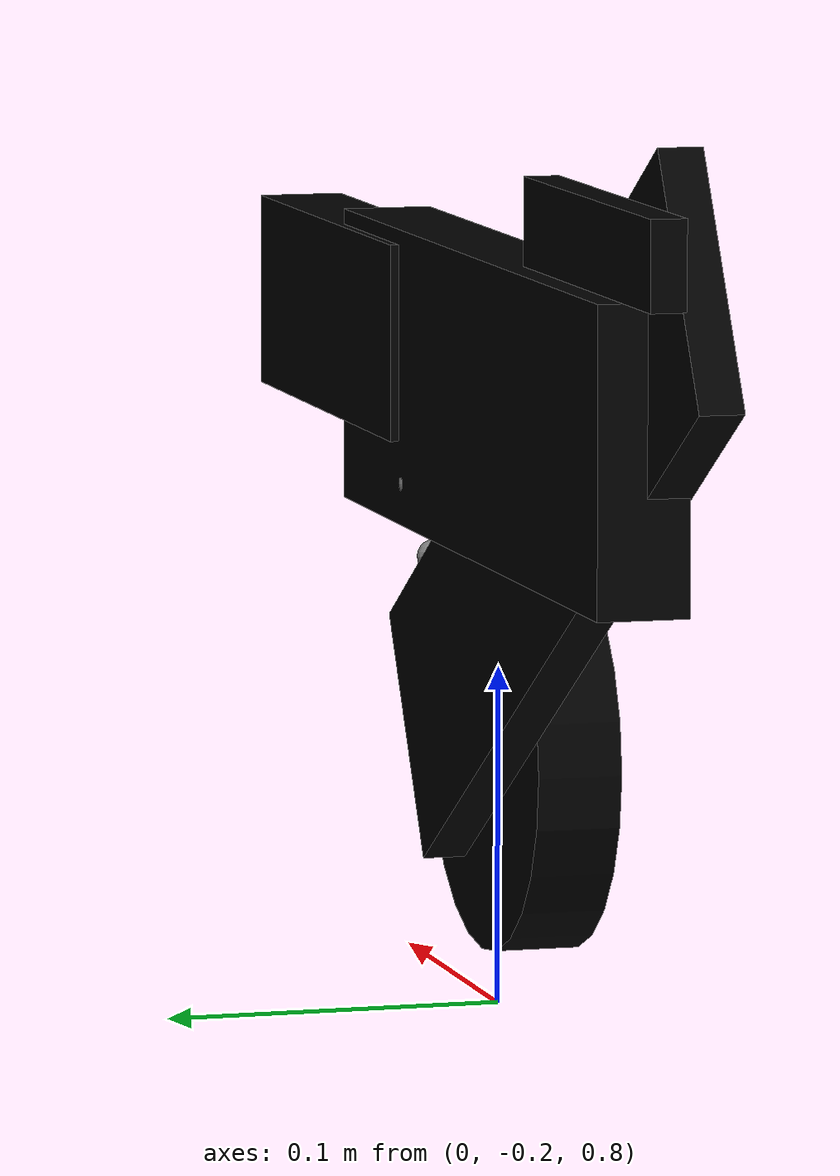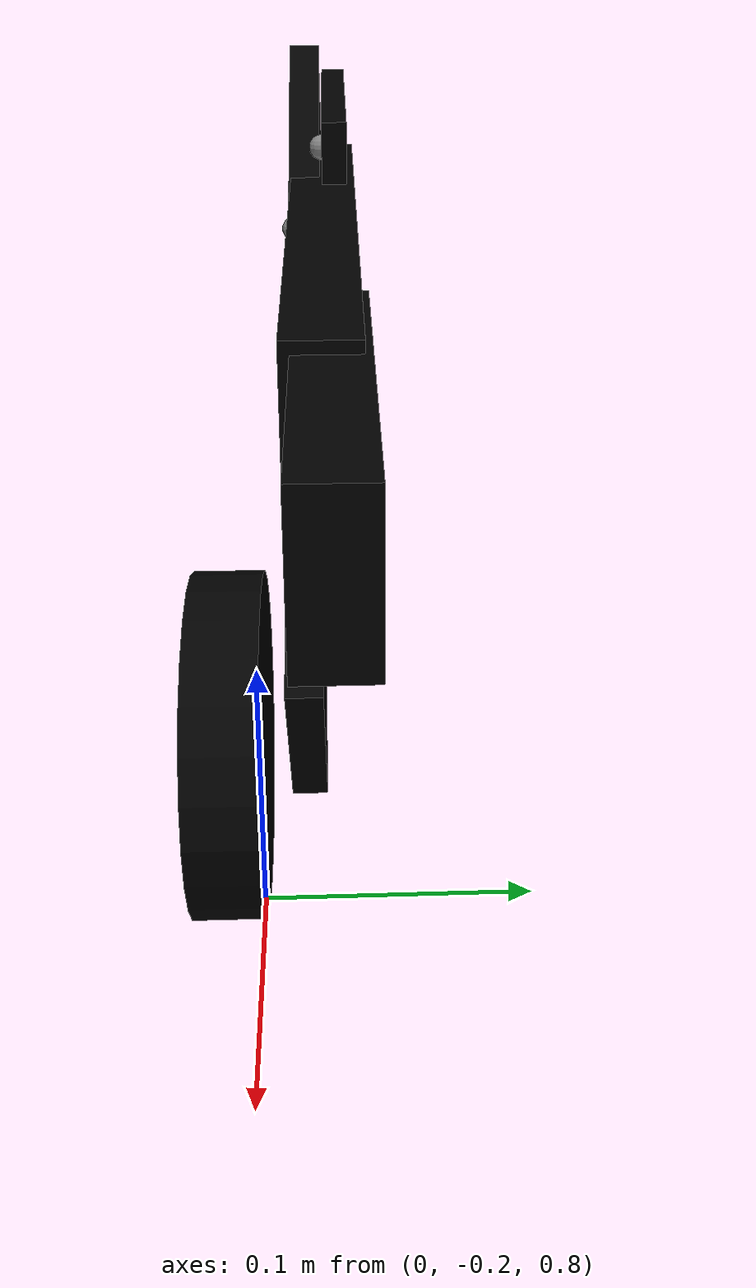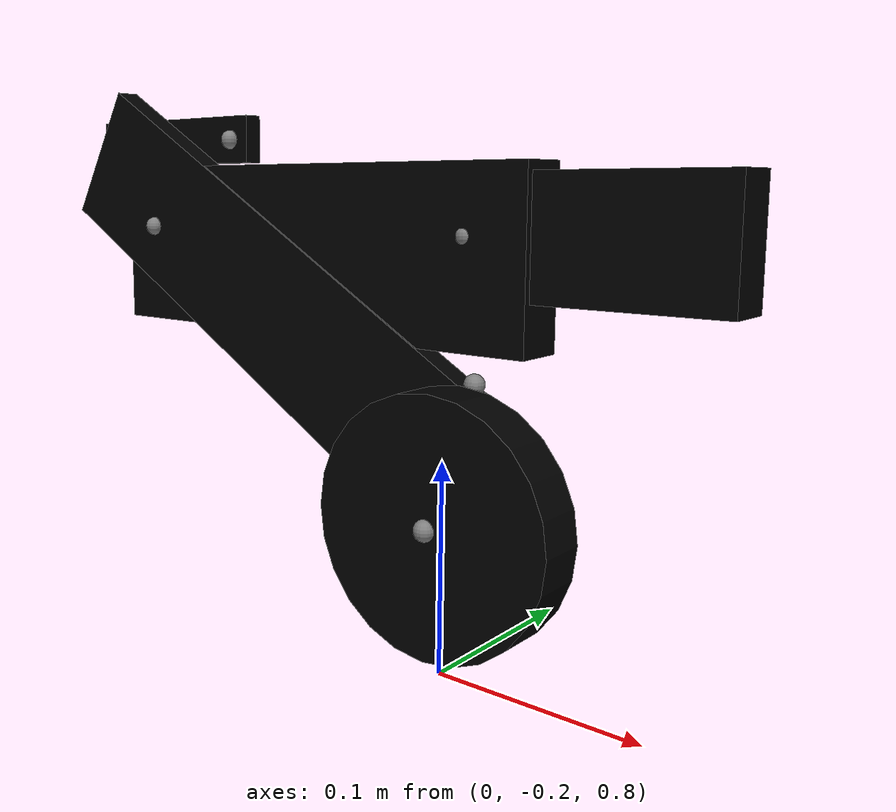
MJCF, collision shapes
<mujoco model="wheelbipeV14_2_sysid_right_fixed_1m">
  <default>
    <default class="robot">
      <default class="motor">
        <joint damping="0.01" armature="0.0" frictionloss="0.01" />
        <motor />
      </default>
      <default class="visual">
        <geom material="visualgeom" contype="0" conaffinity="0" group="2" />
      </default>
      <default class="collision">
        <geom material="collision_material" condim="3" contype="0" conaffinity="1" priority="1" group="1" solref="0.005 1" solimp="0.99 0.999 1e-05" friction="1 0.01 0.01" />
      </default>
    </default>
  </default>
  <compiler angle="radian" />
  <asset>
    <material name="visualgeom" rgba="0.7 0.7 0.7 1" />
    <material name="red" rgba="1 1 1 1" />
    <material name="default_material" rgba="0.7 0.7 0.7 1" />
    <material name="collision_material" rgba="0 0 0 0" />
    <mesh name="base_link.STL" file="../meshes/base_link.STL" />
    <mesh name="right_front1_link.STL" file="../meshes/right_front1_link.STL" />
    <mesh name="right_front2_link.STL" file="../meshes/right_front2_link.STL" />
    <mesh name="right_front3_link.STL" file="../meshes/right_front3_link.STL" />
    <mesh name="right_front4_link.STL" file="../meshes/right_front4_link.STL" />
    <mesh name="right_rear1_link.STL" file="../meshes/right_rear1_link.STL" />
    <mesh name="right_rear2_link.STL" file="../meshes/right_rear2_link.STL" />
    <mesh name="right_wheel_link.STL" file="../meshes/right_wheel_link.STL" />
    <mesh name="right_spring1_link.STL" file="../meshes/right_spring1_link.STL" />
    <mesh name="right_spring2_link.STL" file="../meshes/right_spring2_link.STL" />
  </asset>
  <worldbody>
    <body name="base_link" pos="0 0 1.0" quat="1 0 0 0" childclass="robot">
      <body name="right_front1_link" pos="0 -0.1845 0" quat="1 0 0 0">
        <joint name="right_front1_joint" type="hinge" ref="0.0" class="motor" axis="0 1 0" damping="0.0" frictionloss="1.5" armature="0.035" />
        <site name="right_front1_joint_site" pos="0 0 0" quat="1 0 0 0" />
        <inertial pos="0.02850117 0.01065212 0.00330091" mass="0.12138704" fullinertia="0.00004217 0.00021931 0.00019686 0.00002156 -0.00001816 0.00000250" />
        <geom name="right_front1_link_collision" pos="0.0470403 0.0125 6.4e-06" quat="1 0 0 0" type="box" size="0.0755403 0.0125 0.02845995" class="collision" />
        <geom name="right_front1_link_visual" pos="0 0 0" quat="1 0 0 0" material="default_material" type="mesh" mesh="right_front1_link.STL" class="visual" />
        <body name="right_front2_link" pos="0.11265 0.0095 0.013046" quat="1 0 0 0">
          <joint name="right_front2_joint" type="hinge" ref="0.0" class="motor" range="-1 0.1" axis="0 1 0" />
          <site name="right_front2_joint_site" pos="0 0 0" quat="1 0 0 0" />
          <inertial pos="-0.0543861 0.0044715 -0.0399654" quat="1 0 0 0" mass="0.0328941" diaginertia="2.95e-05 8.24e-05 5.34e-05" />
          <geom name="right_front2_link_visual" pos="0 0 0" quat="1 0 0 0" material="default_material" type="mesh" mesh="right_front2_link.STL" class="visual" />
          <body name="right_front3_link" pos="-0.10879 -0.0065 -0.079941" quat="1 0 0 0">
            <joint name="right_front3_joint" type="hinge" ref="0.0" class="motor" range="-0.1 1" axis="0 1 0" />
            <site name="right_front3_joint_site" pos="0 0 0" quat="1 0 0 0" />
            <inertial pos="-0.0844609 0.002949 0.0515978" quat="1 0 0 0" mass="0.044351" diaginertia="5.04e-05 0.0001643 0.0001141" />
            <geom name="right_front3_link_visual" pos="0 0 0" quat="1 0 0 0" material="default_material" type="mesh" mesh="right_front3_link.STL" class="visual" />
            <body name="right_front4_link" pos="-0.16505 0.0065 0.11386" quat="1 0 0 0">
              <joint name="right_front4_joint" type="hinge" ref="0.0" class="motor" range="-2 0.1" axis="0 1 0" />
              <site name="right_front4_joint_site" pos="0 0 0" quat="1 0 0 0" />
              <inertial pos="-0.0483173 0.0045295 0" quat="1 0 0 0" mass="0.0271098" diaginertia="1.3e-06 3.88e-05 3.79e-05" />
              <geom name="right_front4_link_collision" pos="-0.0483739 0.005 0" quat="1 0 0 0" type="box" size="0.06072605 0.005 0.01242835" class="collision" />
              <geom name="right_front4_link_visual" pos="0 0 0" quat="1 0 0 0" material="default_material" type="mesh" mesh="right_front4_link.STL" class="visual" />
            </body>
          </body>
        </body>
      </body>
      <body name="right_rear1_link" pos="0 -0.174 0" quat="1 0 0 0">
        <joint name="right_rear1_joint" type="hinge" ref="0.0" class="motor" limited="true" range="-3.14 1" axis="0 1 0" armature="0.035" damping="0.0" frictionloss="0.0" />
        <site name="right_rear1_joint_site" pos="0 0 0" quat="1 0 0 0" />
        <inertial pos="-0.11878102 0.00279462 0.00086226" mass="0.38254442" fullinertia="0.00013214 0.00273881 0.00266568 -0.00015056 0.00003507 0.00000111" />
        <geom name="right_rear1_link_collision" pos="-0.0993414 -0.001 -0.0097397" quat="1 0 0 0" type="box" size="0.1323414 0.013 0.0426967" class="collision" />
        <geom name="right_rear1_link_visual" pos="0 0 0" quat="1 0 0 0" material="default_material" type="mesh" mesh="right_rear1_link.STL" class="visual" />
        <body name="right_rear2_link" pos="-0.21 -0.0145 0" quat="1 0 0 0">
          <joint name="right_rear2_joint" type="hinge" ref="0.0" class="motor" range="0 1.2" axis="0 1 0" />
          <site name="right_rear2_joint_site" pos="0 0 0" quat="1 0 0 0" />
          <site name="right_s2r2_rear2_site" pos="0.04758 0.01405 -0.02292" quat="0.997796329836319 0 0.0663512182644112 0" />
          <inertial pos="0.08401127 0.00545683 -0.04698266" mass="0.30296958" fullinertia="0.00101902 0.00353775 0.00253117 -0.00002700 0.00147745 0.00001904" />
          <geom name="right_rear2_link_collision" pos="0.08855 0.0060154 -0.04" quat="0.683072675465 -0.680699920397 0.187956387594 0.186364521216" type="box" size="0.16 0.03884575 0.00632955" class="collision" />
          <geom name="right_rear2_link_visual" pos="0 0 0" quat="1 0 0 0" material="default_material" type="mesh" mesh="right_rear2_link.STL" class="visual" />
          <body name="right_wheel_link" pos="0.21661 -0.03355 -0.12483" quat="1 0 0 0">
            <joint name="right_wheel_joint" type="hinge" ref="0.0" class="motor" axis="0 1 0" damping="0.00" frictionloss="0.023" />
            <site name="right_wheel_joint_site" pos="0 0 0" quat="1 0 0 0" />
            <inertial pos="0.00017786 0.02021922 -0.00007128" mass="0.51208444" fullinertia="0.00038992 0.00063306 0.00038855 -0.00000092 -0.00000070 0.00000038" />
            <geom name="right_wheel_link_collision" pos="0 0.0125 0" quat="0.70710679066 0.707106771713 0 0" type="cylinder" size="0.06 0.0125" class="collision" friction="1.0" />
            <geom name="right_wheel_link_visual" pos="0 0 0" quat="1 0 0 0" material="default_material" type="mesh" mesh="right_wheel_link.STL" class="visual" />
          </body>
        </body>
        <body name="right_spring1_link" pos="0.0023551 0.00195 -0.0449383" quat="1 0 0 0">
          <joint name="right_spring1_joint" type="hinge" ref="0.0" class="motor" range="-0.5 0.1" axis="0 1 0" />
          <site name="right_spring1_joint_site" pos="0 0 0" quat="1 0 0 0" />
          <inertial pos="-0.0452477 0.005217 0.0060453" quat="1 0 0 0" mass="0.0305218" diaginertia="7e-07 1.78e-05 1.74e-05" />
          <geom name="right_spring1_link_visual" pos="0 0 0" quat="1 0 0 0" material="default_material" type="mesh" mesh="right_spring1_link.STL" class="visual" />
          <body name="right_spring2_link" pos="-0.03295 0.0055 0.0044022" quat="0.997795666274 0 0.0663611962244 0">
            <joint name="right_spring2_joint" type="slide" ref="0.0" class="motor" range="-0.015 0.065" axis="-1 0 0" damping="0" frictionloss="0" />
            <site name="right_spring2_joint_site" pos="0 0 0" quat="1 0 0 0" />
            <site name="right_s2r2_spring2_site" pos="-0.133 -0.00795 0.0" quat="1 0 0 0" />
            <inertial pos="-0.0688384 -0.0001674 0" quat="1 0 0 0" mass="0.0923989" diaginertia="2.5e-06 0.0001019 0.0001017" />
            <geom name="right_spring2_link_visual" pos="0 0 0" quat="1 0 0 0" material="default_material" type="mesh" mesh="right_spring2_link.STL" class="visual" />
          </body>
        </body>
      </body>
    </body>
  </worldbody>
  <actuator>
    <motor name="right_front1_joint_ctrl" joint="right_front1_joint" class="motor" forcelimited="true" forcerange="-54 54" />
    <motor name="right_rear1_joint_ctrl" joint="right_rear1_joint" class="motor" forcelimited="true" forcerange="-54 54" />
    <motor name="right_spring2_joint_ctrl" joint="right_spring2_joint" class="motor" />
  </actuator>
  <equality>
    <connect body1="right_front4_link" body2="right_rear2_link" anchor="-0.0966 0 0" solref="0.002 1" solimp="0.99 0.99 0.01 0.5 2" />
    <connect body1="right_front3_link" body2="right_rear1_link" anchor="-0.11726 0.0075 0.06689" solref="0.002 1" solimp="0.99 0.99 0.01 0.5 2" />
    <connect body1="right_spring2_link" body2="right_rear2_link" anchor="-0.133 -0.00795 0" solref="0.002 1" solimp="0.99 0.99 0.01 0.5 2" />
  </equality>
  <contact>
    <exclude body1="base_link" body2="right_front1_link" />
    <exclude body1="base_link" body2="right_rear1_link" />
    <exclude body1="right_rear1_link" body2="right_rear2_link" />
    <exclude body1="right_rear2_link" body2="right_wheel_link" />
    <exclude body1="right_rear1_link" body2="right_spring1_link" />
    <exclude body1="right_spring1_link" body2="right_spring2_link" />
    <exclude body1="right_front4_link" body2="right_rear2_link" />
    <exclude body1="right_front3_link" body2="right_rear1_link" />
    <exclude body1="right_spring2_link" body2="right_rear2_link" />
  </contact>
</mujoco>
